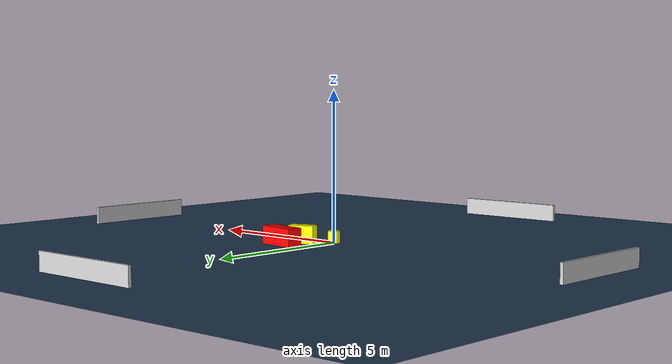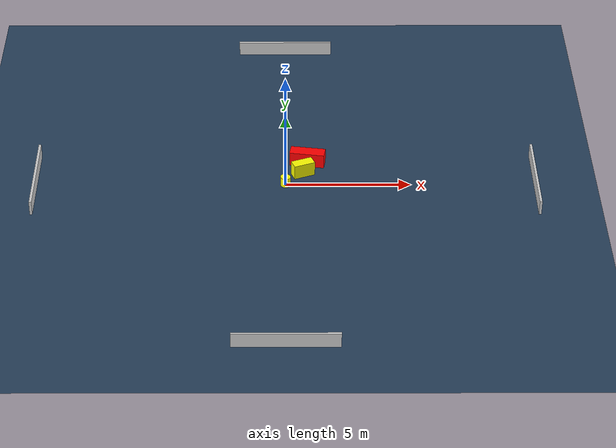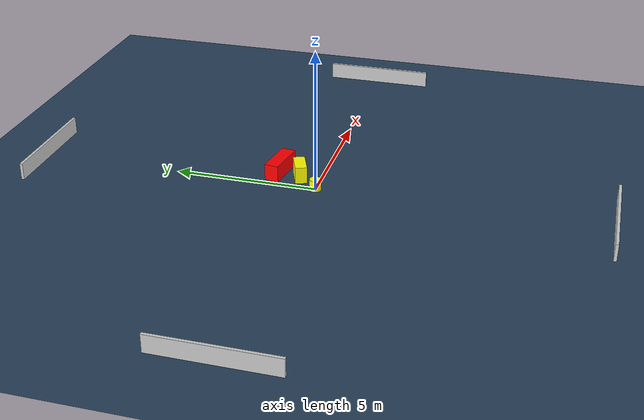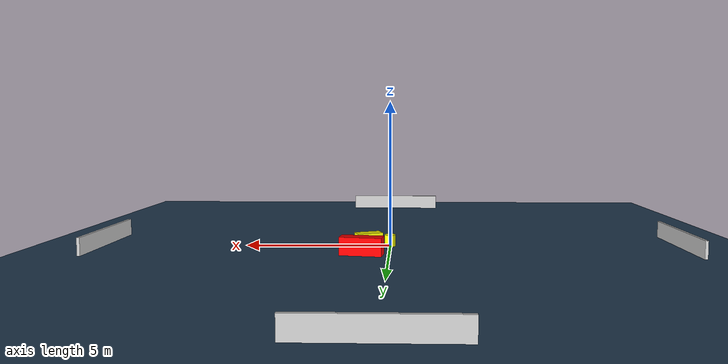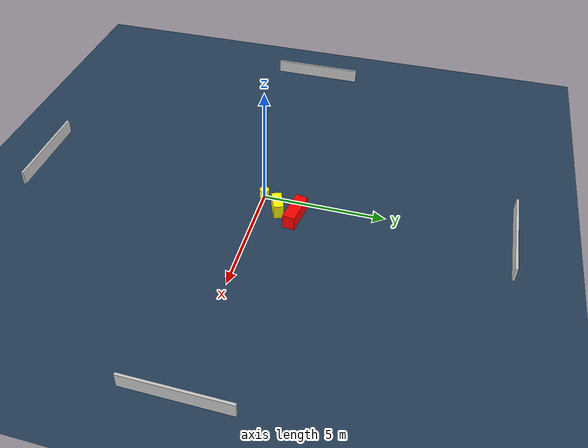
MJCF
<?xml version="1.0" ?>
<mujoco model="generated_environment">
  <option timestep="0.01" integrator="RK4" cone="elliptic"/>
  <default>
    <geom density="1"/>
  </default>
  <asset>
    <texture builtin="gradient" height="3072" name="skybox" rgb1="0.3 0.5 0.7" rgb2="0 0 0" type="skybox" width="512"/>
    <texture builtin="checker" height="300" name="groundplane" rgb1="0.2 0.3 0.4" rgb2="0.1 0.2 0.3" type="2d" width="300"/>
    <material name="groundplane" reflectance="0.2" texrepeat="5 5" texture="groundplane"/>
  </asset>
  <worldbody>
    <light dir="0 0 -1" directional="true" pos="0 0 1.5"/>
    <geom condim="3" friction="0.5 0.005 0.001" material="groundplane" name="floor" pos="0 0 0" size="0 0 0.05" type="plane"/>
    <body name="walls">
      <geom name="wall_1" condim="4" pos="-10.0 0.0 0.3" rgba="0.800000011920929 0.800000011920929 0.800000011920929 1.0" size="0.05 2.0 0.3" type="box"/>
      <geom name="wall_2" condim="4" pos="10.0 0.0 0.3" rgba="0.800000011920929 0.800000011920929 0.800000011920929 1.0" size="0.05 2.0 0.3" type="box"/>
      <geom name="wall_3" condim="4" pos="0.0 -10.0 0.3" rgba="0.800000011920929 0.800000011920929 0.800000011920929 1.0" size="2.0 0.05 0.3" type="box"/>
      <geom name="wall_4" condim="4" pos="0.0 10.0 0.3" rgba="0.800000011920929 0.800000011920929 0.800000011920929 1.0" size="2.0 0.05 0.3" type="box"/>
    </body>
    <body name="robot">
      <joint name="joint_x" type="slide" pos="0 0 0" axis="1 0 0"/>
      <joint name="joint_y" type="slide" pos="0 0 0" axis="0 1 0"/>
      <geom name="robot" type="cylinder" pos="0.0 0.0 0.2" size="0.2 0.2 0.0" mass="5.0" friction="1.0 0.005 0.0001" condim="4" rgba="1.0 1.0 0.0 1.0"/>
    </body>
    <body name="obstacle_1_movable">
      <geom name="obstacle_1_movable" condim="4" pos="0.7033021188041068 0.7454102328543667 0.3" euler="0 0 291.73898347870016" friction="0.0 0.005 0.001" rgba="1.0 1.0 0.0 1.0" size="0.20553675463747675 0.4360219288604687 0.3" type="box" mass="0.1"/>
      <joint type="free"/>
    </body>
    <body name="obstacle_2_static">
      <geom name="obstacle_2_static" condim="4" pos="0.8924117787504128 1.5245886254732044 0.3" euler="0 0 351.18357697352445" friction="0.0 0.005 0.001" rgba="1.0 0.0 0.0 1.0" size="0.7039772842220584 0.2503643269812329 0.3" type="box"/>
    </body>
  </worldbody>
  <actuator>
    <motor name="actuator_x" joint="joint_x" gear="1" ctrlrange="-1 1"/>
    <motor name="actuator_y" joint="joint_y" gear="1" ctrlrange="-1 1"/>
  </actuator>
</mujoco>
